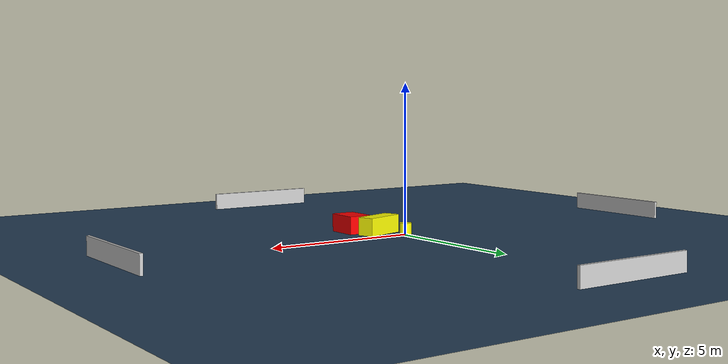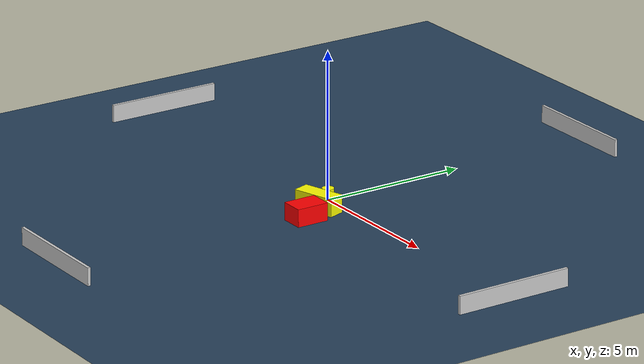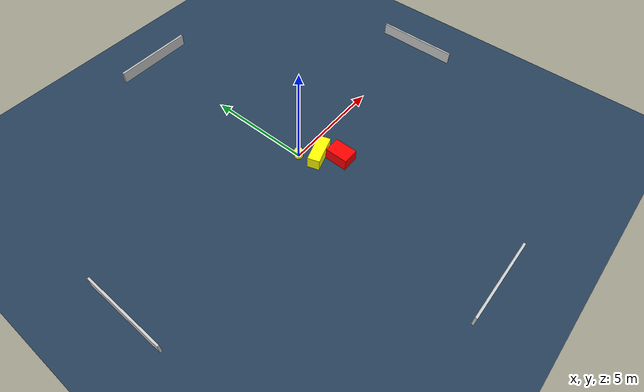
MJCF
<?xml version="1.0" ?>
<mujoco model="generated_environment">
  <option timestep="0.01" integrator="RK4" cone="elliptic"/>
  <default>
    <geom density="1"/>
  </default>
  <asset>
    <texture builtin="gradient" height="3072" name="skybox" rgb1="0.3 0.5 0.7" rgb2="0 0 0" type="skybox" width="512"/>
    <texture builtin="checker" height="300" name="groundplane" rgb1="0.2 0.3 0.4" rgb2="0.1 0.2 0.3" type="2d" width="300"/>
    <material name="groundplane" reflectance="0.2" texrepeat="5 5" texture="groundplane"/>
  </asset>
  <worldbody>
    <light dir="0 0 -1" directional="true" pos="0 0 1.5"/>
    <geom condim="3" friction="0.5 0.005 0.001" material="groundplane" name="floor" pos="0 0 0" size="0 0 0.05" type="plane"/>
    <body name="walls">
      <geom name="wall_1" condim="4" pos="-10.0 0.0 0.3" rgba="0.800000011920929 0.800000011920929 0.800000011920929 1.0" size="0.05 2.0 0.3" type="box"/>
      <geom name="wall_2" condim="4" pos="10.0 0.0 0.3" rgba="0.800000011920929 0.800000011920929 0.800000011920929 1.0" size="0.05 2.0 0.3" type="box"/>
      <geom name="wall_3" condim="4" pos="0.0 -10.0 0.3" rgba="0.800000011920929 0.800000011920929 0.800000011920929 1.0" size="2.0 0.05 0.3" type="box"/>
      <geom name="wall_4" condim="4" pos="0.0 10.0 0.3" rgba="0.800000011920929 0.800000011920929 0.800000011920929 1.0" size="2.0 0.05 0.3" type="box"/>
    </body>
    <body name="robot">
      <joint name="joint_x" type="slide" pos="0 0 0" axis="1 0 0"/>
      <joint name="joint_y" type="slide" pos="0 0 0" axis="0 1 0"/>
      <geom name="robot" type="cylinder" pos="0.0 0.0 0.2" size="0.2 0.2 0.0" mass="5.0" friction="1.0 0.005 0.0001" condim="4" rgba="1.0 1.0 0.0 1.0"/>
    </body>
    <body name="obstacle_1_movable">
      <geom name="obstacle_1_movable" condim="4" pos="0.5632833955203046 -0.7366630841711901 0.3" euler="0 0 17.789278510976953" friction="0.0 0.005 0.001" rgba="1.0 1.0 0.0 1.0" size="0.7277033840082117 0.28666972115271633 0.3" type="box" mass="0.1"/>
      <joint type="free"/>
    </body>
    <body name="obstacle_2_static">
      <geom name="obstacle_2_static" condim="4" pos="1.1117641943851484 -1.5685022304735308 0.3" euler="0 0 269.81835857709825" friction="0.0 0.005 0.001" rgba="1.0 0.0 0.0 1.0" size="0.5520140402299561 0.39602487140932774 0.3" type="box"/>
    </body>
  </worldbody>
  <actuator>
    <motor name="actuator_x" joint="joint_x" gear="1" ctrlrange="-1 1"/>
    <motor name="actuator_y" joint="joint_y" gear="1" ctrlrange="-1 1"/>
  </actuator>
</mujoco>
